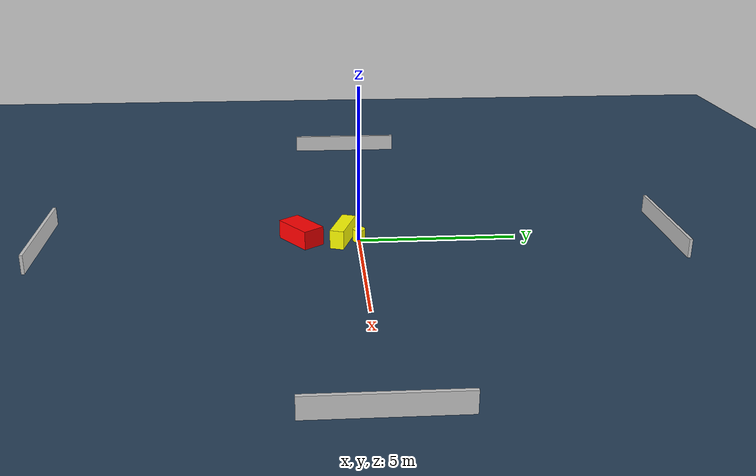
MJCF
<?xml version="1.0" ?>
<mujoco model="generated_environment">
  <option timestep="0.01" integrator="RK4" cone="elliptic"/>
  <default>
    <geom density="1"/>
  </default>
  <asset>
    <texture builtin="gradient" height="3072" name="skybox" rgb1="0.3 0.5 0.7" rgb2="0 0 0" type="skybox" width="512"/>
    <texture builtin="checker" height="300" name="groundplane" rgb1="0.2 0.3 0.4" rgb2="0.1 0.2 0.3" type="2d" width="300"/>
    <material name="groundplane" reflectance="0.2" texrepeat="5 5" texture="groundplane"/>
  </asset>
  <worldbody>
    <light dir="0 0 -1" directional="true" pos="0 0 1.5"/>
    <geom condim="3" friction="0.5 0.005 0.001" material="groundplane" name="floor" pos="0 0 0" size="0 0 0.05" type="plane"/>
    <body name="walls">
      <geom name="wall_1" condim="4" pos="-10.0 0.0 0.3" rgba="0.800000011920929 0.800000011920929 0.800000011920929 1.0" size="0.05 2.0 0.3" type="box"/>
      <geom name="wall_2" condim="4" pos="10.0 0.0 0.3" rgba="0.800000011920929 0.800000011920929 0.800000011920929 1.0" size="0.05 2.0 0.3" type="box"/>
      <geom name="wall_3" condim="4" pos="0.0 -10.0 0.3" rgba="0.800000011920929 0.800000011920929 0.800000011920929 1.0" size="2.0 0.05 0.3" type="box"/>
      <geom name="wall_4" condim="4" pos="0.0 10.0 0.3" rgba="0.800000011920929 0.800000011920929 0.800000011920929 1.0" size="2.0 0.05 0.3" type="box"/>
    </body>
    <body name="robot">
      <joint name="joint_x" type="slide" pos="0 0 0" axis="1 0 0"/>
      <joint name="joint_y" type="slide" pos="0 0 0" axis="0 1 0"/>
      <geom name="robot" type="cylinder" pos="0.0 0.0 0.2" size="0.2 0.2 0.0" mass="5.0" friction="1.0 0.005 0.0001" condim="4" rgba="1.0 1.0 0.0 1.0"/>
    </body>
    <body name="obstacle_1_movable">
      <geom name="obstacle_1_movable" condim="4" pos="-0.020010111720403012 -0.5085880880521478 0.3" euler="0 0 71.68711294902387" friction="0.0 0.005 0.001" rgba="1.0 1.0 0.0 1.0" size="0.22043074622481923 0.7251120206239563 0.3" type="box" mass="0.1"/>
      <joint type="free"/>
    </body>
    <body name="obstacle_2_static">
      <geom name="obstacle_2_static" condim="4" pos="-0.06095167083463756 -1.8320354961310277 0.3" euler="0 0 36.56441890151213" friction="0.0 0.005 0.001" rgba="1.0 0.0 0.0 1.0" size="0.6729564708524471 0.36677205007250174 0.3" type="box"/>
    </body>
  </worldbody>
  <actuator>
    <motor name="actuator_x" joint="joint_x" gear="1" ctrlrange="-1 1"/>
    <motor name="actuator_y" joint="joint_y" gear="1" ctrlrange="-1 1"/>
  </actuator>
</mujoco>
